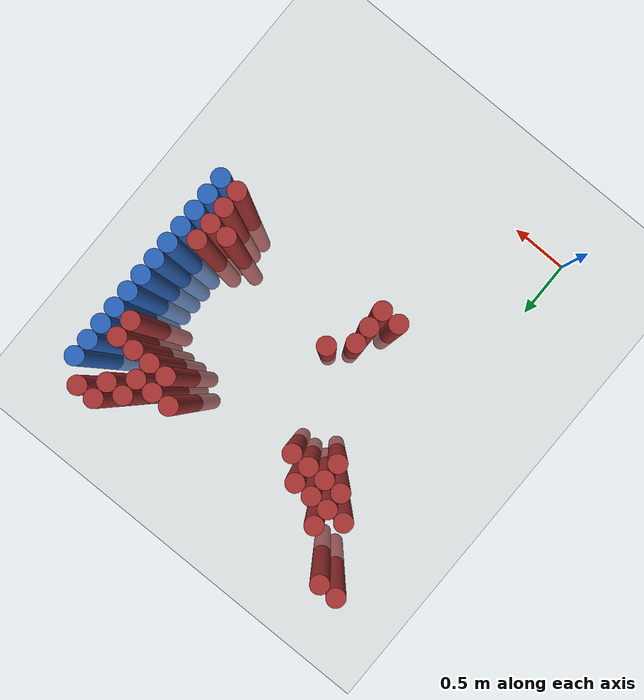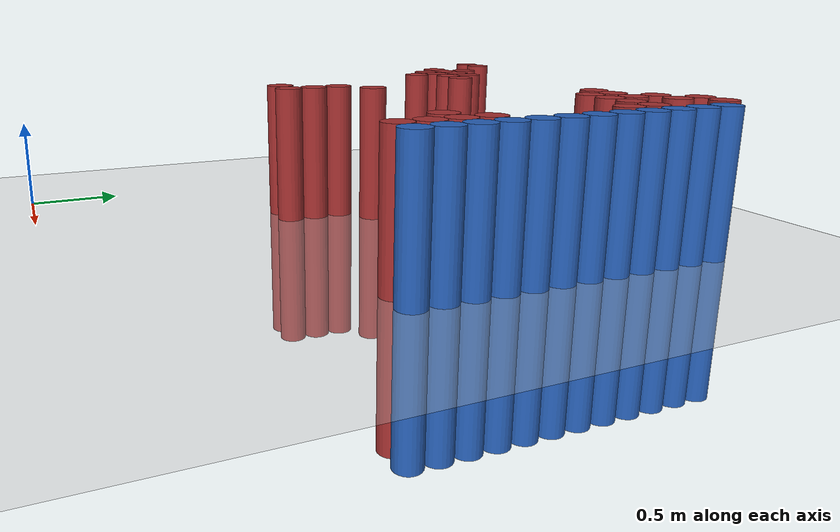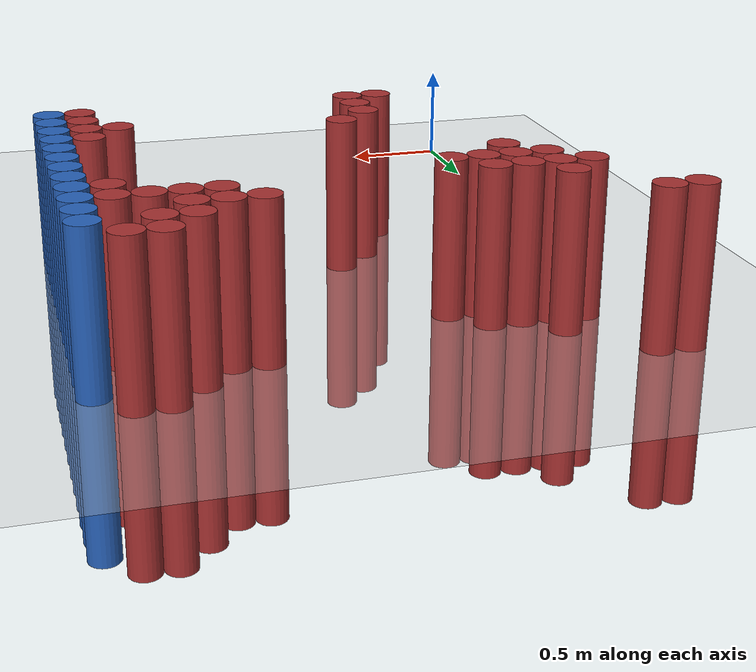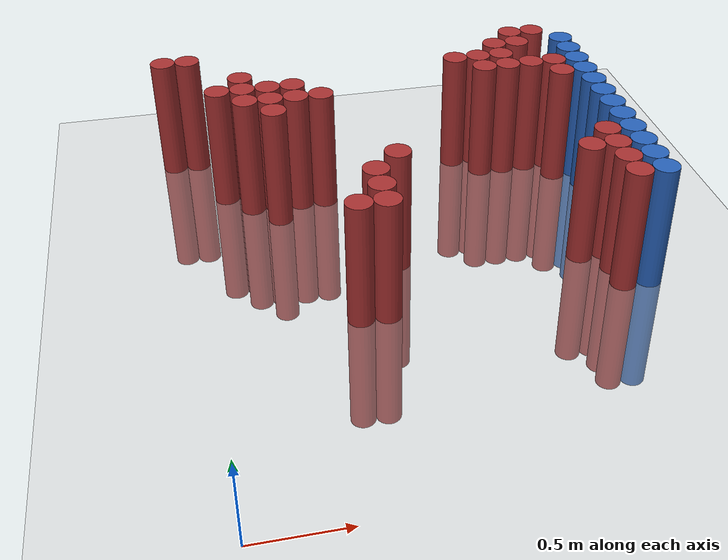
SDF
<sdf version="1.6">
 <world name="default">
  <model name="ground_plane">
   <static>1</static>
   <link name="link">
    <collision name="collision">
     <geometry><plane><normal>0 0 1</normal><size>100 100</size></plane></geometry>
     <surface><friction><ode><mu>100</mu><mu2>50</mu2></ode></friction></surface>
    </collision>
    <visual name="visual">
     <cast_shadows>0</cast_shadows>
     <geometry><plane><normal>0 0 1</normal><size>100 100</size></plane></geometry>
     <material>
      <script><uri>file://media/materials/scripts/gazebo.material</uri><name>Gazebo/Grey</name></script>
     </material>
    </visual>
   </link>
  </model>
  <model name="unit_cylinder_160">
   <static>1</static>
   <pose>-0.125000 3.175000 0.000000 0.000000 0.000000 0.000000</pose>
   <link name="link">
    <inertial>
     <mass>1</mass>
     <inertia><ixx>0.145833</ixx><ixy>0</ixy><ixz>0</ixz><iyy>0.145833</iyy><iyz>0</iyz><izz>0.125</izz></inertia>
    </inertial>
    <collision name="collision">
     <geometry><cylinder><radius>0.075000</radius><length>1.5</length></cylinder></geometry>
    </collision>
    <visual name="visual">
     <geometry><cylinder><radius>0.075000</radius><length>1.5</length></cylinder></geometry>
     <material>
      <ambient>0.648000 0.192000 0.192000 1</ambient>
      <diffuse>0.648000 0.192000 0.192000 1</diffuse>
     </material>
     <material>
      <script><name>Gazebo/Grey</name><uri>file://media/materials/scripts/gazebo.material</uri></script>
     </material>
    </visual>
   </link>
  </model>
  <model name="unit_cylinder_166">
   <static>1</static>
   <pose>0.025000 3.175000 0.000000 0.000000 0.000000 0.000000</pose>
   <link name="link">
    <inertial>
     <mass>1</mass>
     <inertia><ixx>0.145833</ixx><ixy>0</ixy><ixz>0</ixz><iyy>0.145833</iyy><iyz>0</iyz><izz>0.125</izz></inertia>
    </inertial>
    <collision name="collision">
     <geometry><cylinder><radius>0.075000</radius><length>1.5</length></cylinder></geometry>
    </collision>
    <visual name="visual">
     <geometry><cylinder><radius>0.075000</radius><length>1.5</length></cylinder></geometry>
     <material>
      <ambient>0.648000 0.192000 0.192000 1</ambient>
      <diffuse>0.648000 0.192000 0.192000 1</diffuse>
     </material>
     <material>
      <script><name>Gazebo/Grey</name><uri>file://media/materials/scripts/gazebo.material</uri></script>
     </material>
    </visual>
   </link>
  </model>
  <model name="unit_cylinder_171">
   <static>1</static>
   <pose>0.175000 2.725000 0.000000 0.000000 0.000000 0.000000</pose>
   <link name="link">
    <inertial>
     <mass>1</mass>
     <inertia><ixx>0.145833</ixx><ixy>0</ixy><ixz>0</ixz><iyy>0.145833</iyy><iyz>0</iyz><izz>0.125</izz></inertia>
    </inertial>
    <collision name="collision">
     <geometry><cylinder><radius>0.075000</radius><length>1.5</length></cylinder></geometry>
    </collision>
    <visual name="visual">
     <geometry><cylinder><radius>0.075000</radius><length>1.5</length></cylinder></geometry>
     <material>
      <ambient>0.648000 0.192000 0.192000 1</ambient>
      <diffuse>0.648000 0.192000 0.192000 1</diffuse>
     </material>
     <material>
      <script><name>Gazebo/Grey</name><uri>file://media/materials/scripts/gazebo.material</uri></script>
     </material>
    </visual>
   </link>
  </model>
  <model name="unit_cylinder_174">
   <static>1</static>
   <pose>0.325000 2.575000 0.000000 0.000000 0.000000 0.000000</pose>
   <link name="link">
    <inertial>
     <mass>1</mass>
     <inertia><ixx>0.145833</ixx><ixy>0</ixy><ixz>0</ixz><iyy>0.145833</iyy><iyz>0</iyz><izz>0.125</izz></inertia>
    </inertial>
    <collision name="collision">
     <geometry><cylinder><radius>0.075000</radius><length>1.5</length></cylinder></geometry>
    </collision>
    <visual name="visual">
     <geometry><cylinder><radius>0.075000</radius><length>1.5</length></cylinder></geometry>
     <material>
      <ambient>0.648000 0.192000 0.192000 1</ambient>
      <diffuse>0.648000 0.192000 0.192000 1</diffuse>
     </material>
     <material>
      <script><name>Gazebo/Grey</name><uri>file://media/materials/scripts/gazebo.material</uri></script>
     </material>
    </visual>
   </link>
  </model>
  <model name="unit_cylinder_175">
   <static>1</static>
   <pose>0.325000 2.725000 0.000000 0.000000 0.000000 0.000000</pose>
   <link name="link">
    <inertial>
     <mass>1</mass>
     <inertia><ixx>0.145833</ixx><ixy>0</ixy><ixz>0</ixz><iyy>0.145833</iyy><iyz>0</iyz><izz>0.125</izz></inertia>
    </inertial>
    <collision name="collision">
     <geometry><cylinder><radius>0.075000</radius><length>1.5</length></cylinder></geometry>
    </collision>
    <visual name="visual">
     <geometry><cylinder><radius>0.075000</radius><length>1.5</length></cylinder></geometry>
     <material>
      <ambient>0.648000 0.192000 0.192000 1</ambient>
      <diffuse>0.648000 0.192000 0.192000 1</diffuse>
     </material>
     <material>
      <script><name>Gazebo/Grey</name><uri>file://media/materials/scripts/gazebo.material</uri></script>
     </material>
    </visual>
   </link>
  </model>
  <model name="unit_cylinder_176">
   <static>1</static>
   <pose>0.325000 2.875000 0.000000 0.000000 0.000000 0.000000</pose>
   <link name="link">
    <inertial>
     <mass>1</mass>
     <inertia><ixx>0.145833</ixx><ixy>0</ixy><ixz>0</ixz><iyy>0.145833</iyy><iyz>0</iyz><izz>0.125</izz></inertia>
    </inertial>
    <collision name="collision">
     <geometry><cylinder><radius>0.075000</radius><length>1.5</length></cylinder></geometry>
    </collision>
    <visual name="visual">
     <geometry><cylinder><radius>0.075000</radius><length>1.5</length></cylinder></geometry>
     <material>
      <ambient>0.648000 0.192000 0.192000 1</ambient>
      <diffuse>0.648000 0.192000 0.192000 1</diffuse>
     </material>
     <material>
      <script><name>Gazebo/Grey</name><uri>file://media/materials/scripts/gazebo.material</uri></script>
     </material>
    </visual>
   </link>
  </model>
  <model name="unit_cylinder_179">
   <static>1</static>
   <pose>0.475000 2.425000 0.000000 0.000000 0.000000 0.000000</pose>
   <link name="link">
    <inertial>
     <mass>1</mass>
     <inertia><ixx>0.145833</ixx><ixy>0</ixy><ixz>0</ixz><iyy>0.145833</iyy><iyz>0</iyz><izz>0.125</izz></inertia>
    </inertial>
    <collision name="collision">
     <geometry><cylinder><radius>0.075000</radius><length>1.5</length></cylinder></geometry>
    </collision>
    <visual name="visual">
     <geometry><cylinder><radius>0.075000</radius><length>1.5</length></cylinder></geometry>
     <material>
      <ambient>0.648000 0.192000 0.192000 1</ambient>
      <diffuse>0.648000 0.192000 0.192000 1</diffuse>
     </material>
     <material>
      <script><name>Gazebo/Grey</name><uri>file://media/materials/scripts/gazebo.material</uri></script>
     </material>
    </visual>
   </link>
  </model>
  <model name="unit_cylinder_180">
   <static>1</static>
   <pose>0.475000 2.575000 0.000000 0.000000 0.000000 0.000000</pose>
   <link name="link">
    <inertial>
     <mass>1</mass>
     <inertia><ixx>0.145833</ixx><ixy>0</ixy><ixz>0</ixz><iyy>0.145833</iyy><iyz>0</iyz><izz>0.125</izz></inertia>
    </inertial>
    <collision name="collision">
     <geometry><cylinder><radius>0.075000</radius><length>1.5</length></cylinder></geometry>
    </collision>
    <visual name="visual">
     <geometry><cylinder><radius>0.075000</radius><length>1.5</length></cylinder></geometry>
     <material>
      <ambient>0.648000 0.192000 0.192000 1</ambient>
      <diffuse>0.648000 0.192000 0.192000 1</diffuse>
     </material>
     <material>
      <script><name>Gazebo/Grey</name><uri>file://media/materials/scripts/gazebo.material</uri></script>
     </material>
    </visual>
   </link>
  </model>
  <model name="unit_cylinder_181">
   <static>1</static>
   <pose>0.475000 2.725000 0.000000 0.000000 0.000000 0.000000</pose>
   <link name="link">
    <inertial>
     <mass>1</mass>
     <inertia><ixx>0.145833</ixx><ixy>0</ixy><ixz>0</ixz><iyy>0.145833</iyy><iyz>0</iyz><izz>0.125</izz></inertia>
    </inertial>
    <collision name="collision">
     <geometry><cylinder><radius>0.075000</radius><length>1.5</length></cylinder></geometry>
    </collision>
    <visual name="visual">
     <geometry><cylinder><radius>0.075000</radius><length>1.5</length></cylinder></geometry>
     <material>
      <ambient>0.648000 0.192000 0.192000 1</ambient>
      <diffuse>0.648000 0.192000 0.192000 1</diffuse>
     </material>
     <material>
      <script><name>Gazebo/Grey</name><uri>file://media/materials/scripts/gazebo.material</uri></script>
     </material>
    </visual>
   </link>
  </model>
  <model name="unit_cylinder_182">
   <static>1</static>
   <pose>0.625000 2.575000 0.000000 0.000000 0.000000 0.000000</pose>
   <link name="link">
    <inertial>
     <mass>1</mass>
     <inertia><ixx>0.145833</ixx><ixy>0</ixy><ixz>0</ixz><iyy>0.145833</iyy><iyz>0</iyz><izz>0.125</izz></inertia>
    </inertial>
    <collision name="collision">
     <geometry><cylinder><radius>0.075000</radius><length>1.5</length></cylinder></geometry>
    </collision>
    <visual name="visual">
     <geometry><cylinder><radius>0.075000</radius><length>1.5</length></cylinder></geometry>
     <material>
      <ambient>0.648000 0.192000 0.192000 1</ambient>
      <diffuse>0.648000 0.192000 0.192000 1</diffuse>
     </material>
     <material>
      <script><name>Gazebo/Grey</name><uri>file://media/materials/scripts/gazebo.material</uri></script>
     </material>
    </visual>
   </link>
  </model>
  <model name="unit_cylinder_183">
   <static>1</static>
   <pose>0.625000 2.725000 0.000000 0.000000 0.000000 0.000000</pose>
   <link name="link">
    <inertial>
     <mass>1</mass>
     <inertia><ixx>0.145833</ixx><ixy>0</ixy><ixz>0</ixz><iyy>0.145833</iyy><iyz>0</iyz><izz>0.125</izz></inertia>
    </inertial>
    <collision name="collision">
     <geometry><cylinder><radius>0.075000</radius><length>1.5</length></cylinder></geometry>
    </collision>
    <visual name="visual">
     <geometry><cylinder><radius>0.075000</radius><length>1.5</length></cylinder></geometry>
     <material>
      <ambient>0.648000 0.192000 0.192000 1</ambient>
      <diffuse>0.648000 0.192000 0.192000 1</diffuse>
     </material>
     <material>
      <script><name>Gazebo/Grey</name><uri>file://media/materials/scripts/gazebo.material</uri></script>
     </material>
    </visual>
   </link>
  </model>
  <model name="unit_cylinder_185">
   <static>1</static>
   <pose>0.775000 1.375000 0.000000 0.000000 0.000000 0.000000</pose>
   <link name="link">
    <inertial>
     <mass>1</mass>
     <inertia><ixx>0.145833</ixx><ixy>0</ixy><ixz>0</ixz><iyy>0.145833</iyy><iyz>0</iyz><izz>0.125</izz></inertia>
    </inertial>
    <collision name="collision">
     <geometry><cylinder><radius>0.075000</radius><length>1.5</length></cylinder></geometry>
    </collision>
    <visual name="visual">
     <geometry><cylinder><radius>0.075000</radius><length>1.5</length></cylinder></geometry>
     <material>
      <ambient>0.648000 0.192000 0.192000 1</ambient>
      <diffuse>0.648000 0.192000 0.192000 1</diffuse>
     </material>
     <material>
      <script><name>Gazebo/Grey</name><uri>file://media/materials/scripts/gazebo.material</uri></script>
     </material>
    </visual>
   </link>
  </model>
  <model name="unit_cylinder_186">
   <static>1</static>
   <pose>0.775000 2.575000 0.000000 0.000000 0.000000 0.000000</pose>
   <link name="link">
    <inertial>
     <mass>1</mass>
     <inertia><ixx>0.145833</ixx><ixy>0</ixy><ixz>0</ixz><iyy>0.145833</iyy><iyz>0</iyz><izz>0.125</izz></inertia>
    </inertial>
    <collision name="collision">
     <geometry><cylinder><radius>0.075000</radius><length>1.5</length></cylinder></geometry>
    </collision>
    <visual name="visual">
     <geometry><cylinder><radius>0.075000</radius><length>1.5</length></cylinder></geometry>
     <material>
      <ambient>0.648000 0.192000 0.192000 1</ambient>
      <diffuse>0.648000 0.192000 0.192000 1</diffuse>
     </material>
     <material>
      <script><name>Gazebo/Grey</name><uri>file://media/materials/scripts/gazebo.material</uri></script>
     </material>
    </visual>
   </link>
  </model>
  <model name="unit_cylinder_188">
   <static>1</static>
   <pose>0.925000 1.375000 0.000000 0.000000 0.000000 0.000000</pose>
   <link name="link">
    <inertial>
     <mass>1</mass>
     <inertia><ixx>0.145833</ixx><ixy>0</ixy><ixz>0</ixz><iyy>0.145833</iyy><iyz>0</iyz><izz>0.125</izz></inertia>
    </inertial>
    <collision name="collision">
     <geometry><cylinder><radius>0.075000</radius><length>1.5</length></cylinder></geometry>
    </collision>
    <visual name="visual">
     <geometry><cylinder><radius>0.075000</radius><length>1.5</length></cylinder></geometry>
     <material>
      <ambient>0.648000 0.192000 0.192000 1</ambient>
      <diffuse>0.648000 0.192000 0.192000 1</diffuse>
     </material>
     <material>
      <script><name>Gazebo/Grey</name><uri>file://media/materials/scripts/gazebo.material</uri></script>
     </material>
    </visual>
   </link>
  </model>
  <model name="unit_cylinder_189">
   <static>1</static>
   <pose>0.925000 1.525000 0.000000 0.000000 0.000000 0.000000</pose>
   <link name="link">
    <inertial>
     <mass>1</mass>
     <inertia><ixx>0.145833</ixx><ixy>0</ixy><ixz>0</ixz><iyy>0.145833</iyy><iyz>0</iyz><izz>0.125</izz></inertia>
    </inertial>
    <collision name="collision">
     <geometry><cylinder><radius>0.075000</radius><length>1.5</length></cylinder></geometry>
    </collision>
    <visual name="visual">
     <geometry><cylinder><radius>0.075000</radius><length>1.5</length></cylinder></geometry>
     <material>
      <ambient>0.648000 0.192000 0.192000 1</ambient>
      <diffuse>0.648000 0.192000 0.192000 1</diffuse>
     </material>
     <material>
      <script><name>Gazebo/Grey</name><uri>file://media/materials/scripts/gazebo.material</uri></script>
     </material>
    </visual>
   </link>
  </model>
  <model name="unit_cylinder_190">
   <static>1</static>
   <pose>0.925000 1.675000 0.000000 0.000000 0.000000 0.000000</pose>
   <link name="link">
    <inertial>
     <mass>1</mass>
     <inertia><ixx>0.145833</ixx><ixy>0</ixy><ixz>0</ixz><iyy>0.145833</iyy><iyz>0</iyz><izz>0.125</izz></inertia>
    </inertial>
    <collision name="collision">
     <geometry><cylinder><radius>0.075000</radius><length>1.5</length></cylinder></geometry>
    </collision>
    <visual name="visual">
     <geometry><cylinder><radius>0.075000</radius><length>1.5</length></cylinder></geometry>
     <material>
      <ambient>0.648000 0.192000 0.192000 1</ambient>
      <diffuse>0.648000 0.192000 0.192000 1</diffuse>
     </material>
     <material>
      <script><name>Gazebo/Grey</name><uri>file://media/materials/scripts/gazebo.material</uri></script>
     </material>
    </visual>
   </link>
  </model>
  <model name="unit_cylinder_191">
   <static>1</static>
   <pose>1.075000 1.825000 0.000000 0.000000 0.000000 0.000000</pose>
   <link name="link">
    <inertial>
     <mass>1</mass>
     <inertia><ixx>0.145833</ixx><ixy>0</ixy><ixz>0</ixz><iyy>0.145833</iyy><iyz>0</iyz><izz>0.125</izz></inertia>
    </inertial>
    <collision name="collision">
     <geometry><cylinder><radius>0.075000</radius><length>1.5</length></cylinder></geometry>
    </collision>
    <visual name="visual">
     <geometry><cylinder><radius>0.075000</radius><length>1.5</length></cylinder></geometry>
     <material>
      <ambient>0.648000 0.192000 0.192000 1</ambient>
      <diffuse>0.648000 0.192000 0.192000 1</diffuse>
     </material>
     <material>
      <script><name>Gazebo/Grey</name><uri>file://media/materials/scripts/gazebo.material</uri></script>
     </material>
    </visual>
   </link>
  </model>
  <model name="unit_cylinder_212">
   <static>1</static>
   <pose>1.675000 2.875000 0.000000 0.000000 0.000000 0.000000</pose>
   <link name="link">
    <inertial>
     <mass>1</mass>
     <inertia><ixx>0.145833</ixx><ixy>0</ixy><ixz>0</ixz><iyy>0.145833</iyy><iyz>0</iyz><izz>0.125</izz></inertia>
    </inertial>
    <collision name="collision">
     <geometry><cylinder><radius>0.075000</radius><length>1.5</length></cylinder></geometry>
    </collision>
    <visual name="visual">
     <geometry><cylinder><radius>0.075000</radius><length>1.5</length></cylinder></geometry>
     <material>
      <ambient>0.648000 0.192000 0.192000 1</ambient>
      <diffuse>0.648000 0.192000 0.192000 1</diffuse>
     </material>
     <material>
      <script><name>Gazebo/Grey</name><uri>file://media/materials/scripts/gazebo.material</uri></script>
     </material>
    </visual>
   </link>
  </model>
  <model name="unit_cylinder_213">
   <static>1</static>
   <pose>1.825000 2.725000 0.000000 0.000000 0.000000 0.000000</pose>
   <link name="link">
    <inertial>
     <mass>1</mass>
     <inertia><ixx>0.145833</ixx><ixy>0</ixy><ixz>0</ixz><iyy>0.145833</iyy><iyz>0</iyz><izz>0.125</izz></inertia>
    </inertial>
    <collision name="collision">
     <geometry><cylinder><radius>0.075000</radius><length>1.5</length></cylinder></geometry>
    </collision>
    <visual name="visual">
     <geometry><cylinder><radius>0.075000</radius><length>1.5</length></cylinder></geometry>
     <material>
      <ambient>0.648000 0.192000 0.192000 1</ambient>
      <diffuse>0.648000 0.192000 0.192000 1</diffuse>
     </material>
     <material>
      <script><name>Gazebo/Grey</name><uri>file://media/materials/scripts/gazebo.material</uri></script>
     </material>
    </visual>
   </link>
  </model>
  <model name="unit_cylinder_214">
   <static>1</static>
   <pose>1.825000 2.875000 0.000000 0.000000 0.000000 0.000000</pose>
   <link name="link">
    <inertial>
     <mass>1</mass>
     <inertia><ixx>0.145833</ixx><ixy>0</ixy><ixz>0</ixz><iyy>0.145833</iyy><iyz>0</iyz><izz>0.125</izz></inertia>
    </inertial>
    <collision name="collision">
     <geometry><cylinder><radius>0.075000</radius><length>1.5</length></cylinder></geometry>
    </collision>
    <visual name="visual">
     <geometry><cylinder><radius>0.075000</radius><length>1.5</length></cylinder></geometry>
     <material>
      <ambient>0.648000 0.192000 0.192000 1</ambient>
      <diffuse>0.648000 0.192000 0.192000 1</diffuse>
     </material>
     <material>
      <script><name>Gazebo/Grey</name><uri>file://media/materials/scripts/gazebo.material</uri></script>
     </material>
    </visual>
   </link>
  </model>
  <model name="unit_cylinder_216">
   <static>1</static>
   <pose>1.975000 2.725000 0.000000 0.000000 0.000000 0.000000</pose>
   <link name="link">
    <inertial>
     <mass>1</mass>
     <inertia><ixx>0.145833</ixx><ixy>0</ixy><ixz>0</ixz><iyy>0.145833</iyy><iyz>0</iyz><izz>0.125</izz></inertia>
    </inertial>
    <collision name="collision">
     <geometry><cylinder><radius>0.075000</radius><length>1.5</length></cylinder></geometry>
    </collision>
    <visual name="visual">
     <geometry><cylinder><radius>0.075000</radius><length>1.5</length></cylinder></geometry>
     <material>
      <ambient>0.648000 0.192000 0.192000 1</ambient>
      <diffuse>0.648000 0.192000 0.192000 1</diffuse>
     </material>
     <material>
      <script><name>Gazebo/Grey</name><uri>file://media/materials/scripts/gazebo.material</uri></script>
     </material>
    </visual>
   </link>
  </model>
  <model name="unit_cylinder_217">
   <static>1</static>
   <pose>1.975000 2.875000 0.000000 0.000000 0.000000 0.000000</pose>
   <link name="link">
    <inertial>
     <mass>1</mass>
     <inertia><ixx>0.145833</ixx><ixy>0</ixy><ixz>0</ixz><iyy>0.145833</iyy><iyz>0</iyz><izz>0.125</izz></inertia>
    </inertial>
    <collision name="collision">
     <geometry><cylinder><radius>0.075000</radius><length>1.5</length></cylinder></geometry>
    </collision>
    <visual name="visual">
     <geometry><cylinder><radius>0.075000</radius><length>1.5</length></cylinder></geometry>
     <material>
      <ambient>0.648000 0.192000 0.192000 1</ambient>
      <diffuse>0.648000 0.192000 0.192000 1</diffuse>
     </material>
     <material>
      <script><name>Gazebo/Grey</name><uri>file://media/materials/scripts/gazebo.material</uri></script>
     </material>
    </visual>
   </link>
  </model>
  <model name="unit_cylinder_218">
   <static>1</static>
   <pose>1.975000 3.025000 0.000000 0.000000 0.000000 0.000000</pose>
   <link name="link">
    <inertial>
     <mass>1</mass>
     <inertia><ixx>0.145833</ixx><ixy>0</ixy><ixz>0</ixz><iyy>0.145833</iyy><iyz>0</iyz><izz>0.125</izz></inertia>
    </inertial>
    <collision name="collision">
     <geometry><cylinder><radius>0.075000</radius><length>1.5</length></cylinder></geometry>
    </collision>
    <visual name="visual">
     <geometry><cylinder><radius>0.075000</radius><length>1.5</length></cylinder></geometry>
     <material>
      <ambient>0.648000 0.192000 0.192000 1</ambient>
      <diffuse>0.648000 0.192000 0.192000 1</diffuse>
     </material>
     <material>
      <script><name>Gazebo/Grey</name><uri>file://media/materials/scripts/gazebo.material</uri></script>
     </material>
    </visual>
   </link>
  </model>
  <model name="unit_cylinder_224">
   <static>1</static>
   <pose>2.125000 1.675000 0.000000 0.000000 0.000000 0.000000</pose>
   <link name="link">
    <inertial>
     <mass>1</mass>
     <inertia><ixx>0.145833</ixx><ixy>0</ixy><ixz>0</ixz><iyy>0.145833</iyy><iyz>0</iyz><izz>0.125</izz></inertia>
    </inertial>
    <collision name="collision">
     <geometry><cylinder><radius>0.075000</radius><length>1.5</length></cylinder></geometry>
    </collision>
    <visual name="visual">
     <geometry><cylinder><radius>0.075000</radius><length>1.5</length></cylinder></geometry>
     <material>
      <ambient>0.648000 0.192000 0.192000 1</ambient>
      <diffuse>0.648000 0.192000 0.192000 1</diffuse>
     </material>
     <material>
      <script><name>Gazebo/Grey</name><uri>file://media/materials/scripts/gazebo.material</uri></script>
     </material>
    </visual>
   </link>
  </model>
  <model name="unit_cylinder_225">
   <static>1</static>
   <pose>2.125000 2.725000 0.000000 0.000000 0.000000 0.000000</pose>
   <link name="link">
    <inertial>
     <mass>1</mass>
     <inertia><ixx>0.145833</ixx><ixy>0</ixy><ixz>0</ixz><iyy>0.145833</iyy><iyz>0</iyz><izz>0.125</izz></inertia>
    </inertial>
    <collision name="collision">
     <geometry><cylinder><radius>0.075000</radius><length>1.5</length></cylinder></geometry>
    </collision>
    <visual name="visual">
     <geometry><cylinder><radius>0.075000</radius><length>1.5</length></cylinder></geometry>
     <material>
      <ambient>0.648000 0.192000 0.192000 1</ambient>
      <diffuse>0.648000 0.192000 0.192000 1</diffuse>
     </material>
     <material>
      <script><name>Gazebo/Grey</name><uri>file://media/materials/scripts/gazebo.material</uri></script>
     </material>
    </visual>
   </link>
  </model>
  <model name="unit_cylinder_226">
   <static>1</static>
   <pose>2.125000 3.025000 0.000000 0.000000 0.000000 0.000000</pose>
   <link name="link">
    <inertial>
     <mass>1</mass>
     <inertia><ixx>0.145833</ixx><ixy>0</ixy><ixz>0</ixz><iyy>0.145833</iyy><iyz>0</iyz><izz>0.125</izz></inertia>
    </inertial>
    <collision name="collision">
     <geometry><cylinder><radius>0.075000</radius><length>1.5</length></cylinder></geometry>
    </collision>
    <visual name="visual">
     <geometry><cylinder><radius>0.075000</radius><length>1.5</length></cylinder></geometry>
     <material>
      <ambient>0.648000 0.192000 0.192000 1</ambient>
      <diffuse>0.648000 0.192000 0.192000 1</diffuse>
     </material>
     <material>
      <script><name>Gazebo/Grey</name><uri>file://media/materials/scripts/gazebo.material</uri></script>
     </material>
    </visual>
   </link>
  </model>
  <model name="unit_cylinder_227">
   <static>1</static>
   <pose>2.125000 3.175000 0.000000 0.000000 0.000000 0.000000</pose>
   <link name="link">
    <inertial>
     <mass>1</mass>
     <inertia><ixx>0.145833</ixx><ixy>0</ixy><ixz>0</ixz><iyy>0.145833</iyy><iyz>0</iyz><izz>0.125</izz></inertia>
    </inertial>
    <collision name="collision">
     <geometry><cylinder><radius>0.075000</radius><length>1.5</length></cylinder></geometry>
    </collision>
    <visual name="visual">
     <geometry><cylinder><radius>0.075000</radius><length>1.5</length></cylinder></geometry>
     <material>
      <ambient>0.648000 0.192000 0.192000 1</ambient>
      <diffuse>0.648000 0.192000 0.192000 1</diffuse>
     </material>
     <material>
      <script><name>Gazebo/Grey</name><uri>file://media/materials/scripts/gazebo.material</uri></script>
     </material>
    </visual>
   </link>
  </model>
  <model name="unit_cylinder_232">
   <static>1</static>
   <pose>2.275000 1.375000 0.000000 0.000000 0.000000 0.000000</pose>
   <link name="link">
    <inertial>
     <mass>1</mass>
     <inertia><ixx>0.145833</ixx><ixy>0</ixy><ixz>0</ixz><iyy>0.145833</iyy><iyz>0</iyz><izz>0.125</izz></inertia>
    </inertial>
    <collision name="collision">
     <geometry><cylinder><radius>0.075000</radius><length>1.5</length></cylinder></geometry>
    </collision>
    <visual name="visual">
     <geometry><cylinder><radius>0.075000</radius><length>1.5</length></cylinder></geometry>
     <material>
      <ambient>0.648000 0.192000 0.192000 1</ambient>
      <diffuse>0.648000 0.192000 0.192000 1</diffuse>
     </material>
     <material>
      <script><name>Gazebo/Grey</name><uri>file://media/materials/scripts/gazebo.material</uri></script>
     </material>
    </visual>
   </link>
  </model>
  <model name="unit_cylinder_233">
   <static>1</static>
   <pose>2.275000 1.525000 0.000000 0.000000 0.000000 0.000000</pose>
   <link name="link">
    <inertial>
     <mass>1</mass>
     <inertia><ixx>0.145833</ixx><ixy>0</ixy><ixz>0</ixz><iyy>0.145833</iyy><iyz>0</iyz><izz>0.125</izz></inertia>
    </inertial>
    <collision name="collision">
     <geometry><cylinder><radius>0.075000</radius><length>1.5</length></cylinder></geometry>
    </collision>
    <visual name="visual">
     <geometry><cylinder><radius>0.075000</radius><length>1.5</length></cylinder></geometry>
     <material>
      <ambient>0.648000 0.192000 0.192000 1</ambient>
      <diffuse>0.648000 0.192000 0.192000 1</diffuse>
     </material>
     <material>
      <script><name>Gazebo/Grey</name><uri>file://media/materials/scripts/gazebo.material</uri></script>
     </material>
    </visual>
   </link>
  </model>
  <model name="unit_cylinder_234">
   <static>1</static>
   <pose>2.275000 1.675000 0.000000 0.000000 0.000000 0.000000</pose>
   <link name="link">
    <inertial>
     <mass>1</mass>
     <inertia><ixx>0.145833</ixx><ixy>0</ixy><ixz>0</ixz><iyy>0.145833</iyy><iyz>0</iyz><izz>0.125</izz></inertia>
    </inertial>
    <collision name="collision">
     <geometry><cylinder><radius>0.075000</radius><length>1.5</length></cylinder></geometry>
    </collision>
    <visual name="visual">
     <geometry><cylinder><radius>0.075000</radius><length>1.5</length></cylinder></geometry>
     <material>
      <ambient>0.648000 0.192000 0.192000 1</ambient>
      <diffuse>0.648000 0.192000 0.192000 1</diffuse>
     </material>
     <material>
      <script><name>Gazebo/Grey</name><uri>file://media/materials/scripts/gazebo.material</uri></script>
     </material>
    </visual>
   </link>
  </model>
  <model name="unit_cylinder_235">
   <static>1</static>
   <pose>2.275000 1.825000 0.000000 0.000000 0.000000 0.000000</pose>
   <link name="link">
    <inertial>
     <mass>1</mass>
     <inertia><ixx>0.145833</ixx><ixy>0</ixy><ixz>0</ixz><iyy>0.145833</iyy><iyz>0</iyz><izz>0.125</izz></inertia>
    </inertial>
    <collision name="collision">
     <geometry><cylinder><radius>0.075000</radius><length>1.5</length></cylinder></geometry>
    </collision>
    <visual name="visual">
     <geometry><cylinder><radius>0.075000</radius><length>1.5</length></cylinder></geometry>
     <material>
      <ambient>0.648000 0.192000 0.192000 1</ambient>
      <diffuse>0.648000 0.192000 0.192000 1</diffuse>
     </material>
     <material>
      <script><name>Gazebo/Grey</name><uri>file://media/materials/scripts/gazebo.material</uri></script>
     </material>
    </visual>
   </link>
  </model>
  <model name="unit_cylinder_236">
   <static>1</static>
   <pose>2.275000 2.575000 0.000000 0.000000 0.000000 0.000000</pose>
   <link name="link">
    <inertial>
     <mass>1</mass>
     <inertia><ixx>0.145833</ixx><ixy>0</ixy><ixz>0</ixz><iyy>0.145833</iyy><iyz>0</iyz><izz>0.125</izz></inertia>
    </inertial>
    <collision name="collision">
     <geometry><cylinder><radius>0.075000</radius><length>1.5</length></cylinder></geometry>
    </collision>
    <visual name="visual">
     <geometry><cylinder><radius>0.075000</radius><length>1.5</length></cylinder></geometry>
     <material>
      <ambient>0.648000 0.192000 0.192000 1</ambient>
      <diffuse>0.648000 0.192000 0.192000 1</diffuse>
     </material>
     <material>
      <script><name>Gazebo/Grey</name><uri>file://media/materials/scripts/gazebo.material</uri></script>
     </material>
    </visual>
   </link>
  </model>
  <model name="unit_cylinder_237">
   <static>1</static>
   <pose>2.275000 2.725000 0.000000 0.000000 0.000000 0.000000</pose>
   <link name="link">
    <inertial>
     <mass>1</mass>
     <inertia><ixx>0.145833</ixx><ixy>0</ixy><ixz>0</ixz><iyy>0.145833</iyy><iyz>0</iyz><izz>0.125</izz></inertia>
    </inertial>
    <collision name="collision">
     <geometry><cylinder><radius>0.075000</radius><length>1.5</length></cylinder></geometry>
    </collision>
    <visual name="visual">
     <geometry><cylinder><radius>0.075000</radius><length>1.5</length></cylinder></geometry>
     <material>
      <ambient>0.648000 0.192000 0.192000 1</ambient>
      <diffuse>0.648000 0.192000 0.192000 1</diffuse>
     </material>
     <material>
      <script><name>Gazebo/Grey</name><uri>file://media/materials/scripts/gazebo.material</uri></script>
     </material>
    </visual>
   </link>
  </model>
  <model name="unit_cylinder_238">
   <static>1</static>
   <pose>2.275000 3.175000 0.000000 0.000000 0.000000 0.000000</pose>
   <link name="link">
    <inertial>
     <mass>1</mass>
     <inertia><ixx>0.145833</ixx><ixy>0</ixy><ixz>0</ixz><iyy>0.145833</iyy><iyz>0</iyz><izz>0.125</izz></inertia>
    </inertial>
    <collision name="collision">
     <geometry><cylinder><radius>0.075000</radius><length>1.5</length></cylinder></geometry>
    </collision>
    <visual name="visual">
     <geometry><cylinder><radius>0.075000</radius><length>1.5</length></cylinder></geometry>
     <material>
      <ambient>0.648000 0.192000 0.192000 1</ambient>
      <diffuse>0.648000 0.192000 0.192000 1</diffuse>
     </material>
     <material>
      <script><name>Gazebo/Grey</name><uri>file://media/materials/scripts/gazebo.material</uri></script>
     </material>
    </visual>
   </link>
  </model>
  <model name="unit_cylinder_252">
   <static>1</static>
   <pose>2.425000 1.375000 0.000000 0.000000 0.000000 0.000000</pose>
   <link name="link">
    <inertial>
     <mass>1</mass>
     <inertia><ixx>0.145833</ixx><ixy>0</ixy><ixz>0</ixz><iyy>0.145833</iyy><iyz>0</iyz><izz>0.125</izz></inertia>
    </inertial>
    <collision name="collision">
     <geometry><cylinder><radius>0.075000</radius><length>1.5</length></cylinder></geometry>
    </collision>
    <visual name="visual">
     <geometry><cylinder><radius>0.075000</radius><length>1.5</length></cylinder></geometry>
     <material>
      <ambient>0.152000 0.379000 0.720000 1</ambient>
      <diffuse>0.152000 0.379000 0.720000 1</diffuse>
     </material>
     <material>
      <script><name>Gazebo/Grey</name><uri>file://media/materials/scripts/gazebo.material</uri></script>
     </material>
    </visual>
   </link>
  </model>
  <model name="unit_cylinder_253">
   <static>1</static>
   <pose>2.425000 1.525000 0.000000 0.000000 0.000000 0.000000</pose>
   <link name="link">
    <inertial>
     <mass>1</mass>
     <inertia><ixx>0.145833</ixx><ixy>0</ixy><ixz>0</ixz><iyy>0.145833</iyy><iyz>0</iyz><izz>0.125</izz></inertia>
    </inertial>
    <collision name="collision">
     <geometry><cylinder><radius>0.075000</radius><length>1.5</length></cylinder></geometry>
    </collision>
    <visual name="visual">
     <geometry><cylinder><radius>0.075000</radius><length>1.5</length></cylinder></geometry>
     <material>
      <ambient>0.152000 0.379000 0.720000 1</ambient>
      <diffuse>0.152000 0.379000 0.720000 1</diffuse>
     </material>
     <material>
      <script><name>Gazebo/Grey</name><uri>file://media/materials/scripts/gazebo.material</uri></script>
     </material>
    </visual>
   </link>
  </model>
  <model name="unit_cylinder_254">
   <static>1</static>
   <pose>2.425000 1.675000 0.000000 0.000000 0.000000 0.000000</pose>
   <link name="link">
    <inertial>
     <mass>1</mass>
     <inertia><ixx>0.145833</ixx><ixy>0</ixy><ixz>0</ixz><iyy>0.145833</iyy><iyz>0</iyz><izz>0.125</izz></inertia>
    </inertial>
    <collision name="collision">
     <geometry><cylinder><radius>0.075000</radius><length>1.5</length></cylinder></geometry>
    </collision>
    <visual name="visual">
     <geometry><cylinder><radius>0.075000</radius><length>1.5</length></cylinder></geometry>
     <material>
      <ambient>0.152000 0.379000 0.720000 1</ambient>
      <diffuse>0.152000 0.379000 0.720000 1</diffuse>
     </material>
     <material>
      <script><name>Gazebo/Grey</name><uri>file://media/materials/scripts/gazebo.material</uri></script>
     </material>
    </visual>
   </link>
  </model>
  <model name="unit_cylinder_255">
   <static>1</static>
   <pose>2.425000 1.825000 0.000000 0.000000 0.000000 0.000000</pose>
   <link name="link">
    <inertial>
     <mass>1</mass>
     <inertia><ixx>0.145833</ixx><ixy>0</ixy><ixz>0</ixz><iyy>0.145833</iyy><iyz>0</iyz><izz>0.125</izz></inertia>
    </inertial>
    <collision name="collision">
     <geometry><cylinder><radius>0.075000</radius><length>1.5</length></cylinder></geometry>
    </collision>
    <visual name="visual">
     <geometry><cylinder><radius>0.075000</radius><length>1.5</length></cylinder></geometry>
     <material>
      <ambient>0.152000 0.379000 0.720000 1</ambient>
      <diffuse>0.152000 0.379000 0.720000 1</diffuse>
     </material>
     <material>
      <script><name>Gazebo/Grey</name><uri>file://media/materials/scripts/gazebo.material</uri></script>
     </material>
    </visual>
   </link>
  </model>
  <model name="unit_cylinder_256">
   <static>1</static>
   <pose>2.425000 1.975000 0.000000 0.000000 0.000000 0.000000</pose>
   <link name="link">
    <inertial>
     <mass>1</mass>
     <inertia><ixx>0.145833</ixx><ixy>0</ixy><ixz>0</ixz><iyy>0.145833</iyy><iyz>0</iyz><izz>0.125</izz></inertia>
    </inertial>
    <collision name="collision">
     <geometry><cylinder><radius>0.075000</radius><length>1.5</length></cylinder></geometry>
    </collision>
    <visual name="visual">
     <geometry><cylinder><radius>0.075000</radius><length>1.5</length></cylinder></geometry>
     <material>
      <ambient>0.152000 0.379000 0.720000 1</ambient>
      <diffuse>0.152000 0.379000 0.720000 1</diffuse>
     </material>
     <material>
      <script><name>Gazebo/Grey</name><uri>file://media/materials/scripts/gazebo.material</uri></script>
     </material>
    </visual>
   </link>
  </model>
  <model name="unit_cylinder_257">
   <static>1</static>
   <pose>2.425000 2.125000 0.000000 0.000000 0.000000 0.000000</pose>
   <link name="link">
    <inertial>
     <mass>1</mass>
     <inertia><ixx>0.145833</ixx><ixy>0</ixy><ixz>0</ixz><iyy>0.145833</iyy><iyz>0</iyz><izz>0.125</izz></inertia>
    </inertial>
    <collision name="collision">
     <geometry><cylinder><radius>0.075000</radius><length>1.5</length></cylinder></geometry>
    </collision>
    <visual name="visual">
     <geometry><cylinder><radius>0.075000</radius><length>1.5</length></cylinder></geometry>
     <material>
      <ambient>0.152000 0.379000 0.720000 1</ambient>
      <diffuse>0.152000 0.379000 0.720000 1</diffuse>
     </material>
     <material>
      <script><name>Gazebo/Grey</name><uri>file://media/materials/scripts/gazebo.material</uri></script>
     </material>
    </visual>
   </link>
  </model>
  <model name="unit_cylinder_258">
   <static>1</static>
   <pose>2.425000 2.275000 0.000000 0.000000 0.000000 0.000000</pose>
   <link name="link">
    <inertial>
     <mass>1</mass>
     <inertia><ixx>0.145833</ixx><ixy>0</ixy><ixz>0</ixz><iyy>0.145833</iyy><iyz>0</iyz><izz>0.125</izz></inertia>
    </inertial>
    <collision name="collision">
     <geometry><cylinder><radius>0.075000</radius><length>1.5</length></cylinder></geometry>
    </collision>
    <visual name="visual">
     <geometry><cylinder><radius>0.075000</radius><length>1.5</length></cylinder></geometry>
     <material>
      <ambient>0.152000 0.379000 0.720000 1</ambient>
      <diffuse>0.152000 0.379000 0.720000 1</diffuse>
     </material>
     <material>
      <script><name>Gazebo/Grey</name><uri>file://media/materials/scripts/gazebo.material</uri></script>
     </material>
    </visual>
   </link>
  </model>
  <model name="unit_cylinder_259">
   <static>1</static>
   <pose>2.425000 2.425000 0.000000 0.000000 0.000000 0.000000</pose>
   <link name="link">
    <inertial>
     <mass>1</mass>
     <inertia><ixx>0.145833</ixx><ixy>0</ixy><ixz>0</ixz><iyy>0.145833</iyy><iyz>0</iyz><izz>0.125</izz></inertia>
    </inertial>
    <collision name="collision">
     <geometry><cylinder><radius>0.075000</radius><length>1.5</length></cylinder></geometry>
    </collision>
    <visual name="visual">
     <geometry><cylinder><radius>0.075000</radius><length>1.5</length></cylinder></geometry>
     <material>
      <ambient>0.152000 0.379000 0.720000 1</ambient>
      <diffuse>0.152000 0.379000 0.720000 1</diffuse>
     </material>
     <material>
      <script><name>Gazebo/Grey</name><uri>file://media/materials/scripts/gazebo.material</uri></script>
     </material>
    </visual>
   </link>
  </model>
  <model name="unit_cylinder_260">
   <static>1</static>
   <pose>2.425000 2.575000 0.000000 0.000000 0.000000 0.000000</pose>
   <link name="link">
    <inertial>
     <mass>1</mass>
     <inertia><ixx>0.145833</ixx><ixy>0</ixy><ixz>0</ixz><iyy>0.145833</iyy><iyz>0</iyz><izz>0.125</izz></inertia>
    </inertial>
    <collision name="collision">
     <geometry><cylinder><radius>0.075000</radius><length>1.5</length></cylinder></geometry>
    </collision>
    <visual name="visual">
     <geometry><cylinder><radius>0.075000</radius><length>1.5</length></cylinder></geometry>
     <material>
      <ambient>0.152000 0.379000 0.720000 1</ambient>
      <diffuse>0.152000 0.379000 0.720000 1</diffuse>
     </material>
     <material>
      <script><name>Gazebo/Grey</name><uri>file://media/materials/scripts/gazebo.material</uri></script>
     </material>
    </visual>
   </link>
  </model>
  <model name="unit_cylinder_261">
   <static>1</static>
   <pose>2.425000 2.725000 0.000000 0.000000 0.000000 0.000000</pose>
   <link name="link">
    <inertial>
     <mass>1</mass>
     <inertia><ixx>0.145833</ixx><ixy>0</ixy><ixz>0</ixz><iyy>0.145833</iyy><iyz>0</iyz><izz>0.125</izz></inertia>
    </inertial>
    <collision name="collision">
     <geometry><cylinder><radius>0.075000</radius><length>1.5</length></cylinder></geometry>
    </collision>
    <visual name="visual">
     <geometry><cylinder><radius>0.075000</radius><length>1.5</length></cylinder></geometry>
     <material>
      <ambient>0.152000 0.379000 0.720000 1</ambient>
      <diffuse>0.152000 0.379000 0.720000 1</diffuse>
     </material>
     <material>
      <script><name>Gazebo/Grey</name><uri>file://media/materials/scripts/gazebo.material</uri></script>
     </material>
    </visual>
   </link>
  </model>
  <model name="unit_cylinder_262">
   <static>1</static>
   <pose>2.425000 2.875000 0.000000 0.000000 0.000000 0.000000</pose>
   <link name="link">
    <inertial>
     <mass>1</mass>
     <inertia><ixx>0.145833</ixx><ixy>0</ixy><ixz>0</ixz><iyy>0.145833</iyy><iyz>0</iyz><izz>0.125</izz></inertia>
    </inertial>
    <collision name="collision">
     <geometry><cylinder><radius>0.075000</radius><length>1.5</length></cylinder></geometry>
    </collision>
    <visual name="visual">
     <geometry><cylinder><radius>0.075000</radius><length>1.5</length></cylinder></geometry>
     <material>
      <ambient>0.152000 0.379000 0.720000 1</ambient>
      <diffuse>0.152000 0.379000 0.720000 1</diffuse>
     </material>
     <material>
      <script><name>Gazebo/Grey</name><uri>file://media/materials/scripts/gazebo.material</uri></script>
     </material>
    </visual>
   </link>
  </model>
  <model name="unit_cylinder_263">
   <static>1</static>
   <pose>2.425000 3.025000 0.000000 0.000000 0.000000 0.000000</pose>
   <link name="link">
    <inertial>
     <mass>1</mass>
     <inertia><ixx>0.145833</ixx><ixy>0</ixy><ixz>0</ixz><iyy>0.145833</iyy><iyz>0</iyz><izz>0.125</izz></inertia>
    </inertial>
    <collision name="collision">
     <geometry><cylinder><radius>0.075000</radius><length>1.5</length></cylinder></geometry>
    </collision>
    <visual name="visual">
     <geometry><cylinder><radius>0.075000</radius><length>1.5</length></cylinder></geometry>
     <material>
      <ambient>0.152000 0.379000 0.720000 1</ambient>
      <diffuse>0.152000 0.379000 0.720000 1</diffuse>
     </material>
     <material>
      <script><name>Gazebo/Grey</name><uri>file://media/materials/scripts/gazebo.material</uri></script>
     </material>
    </visual>
   </link>
  </model>
 </world>
</sdf>
